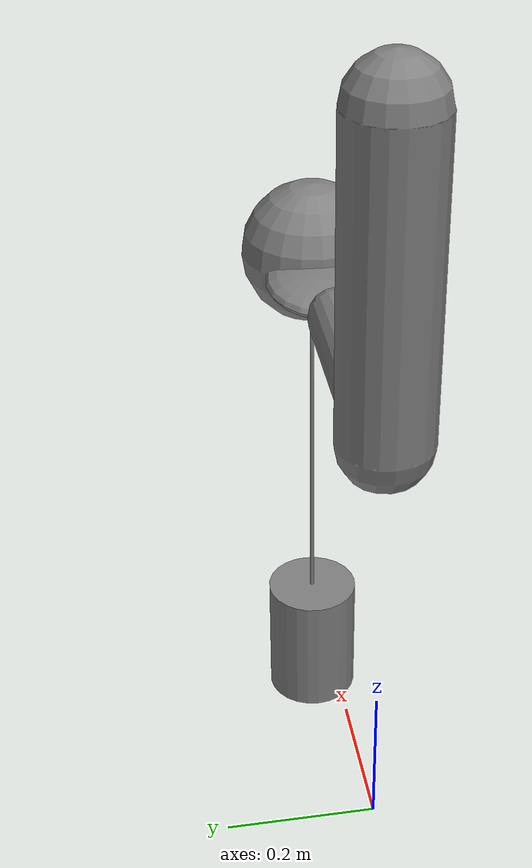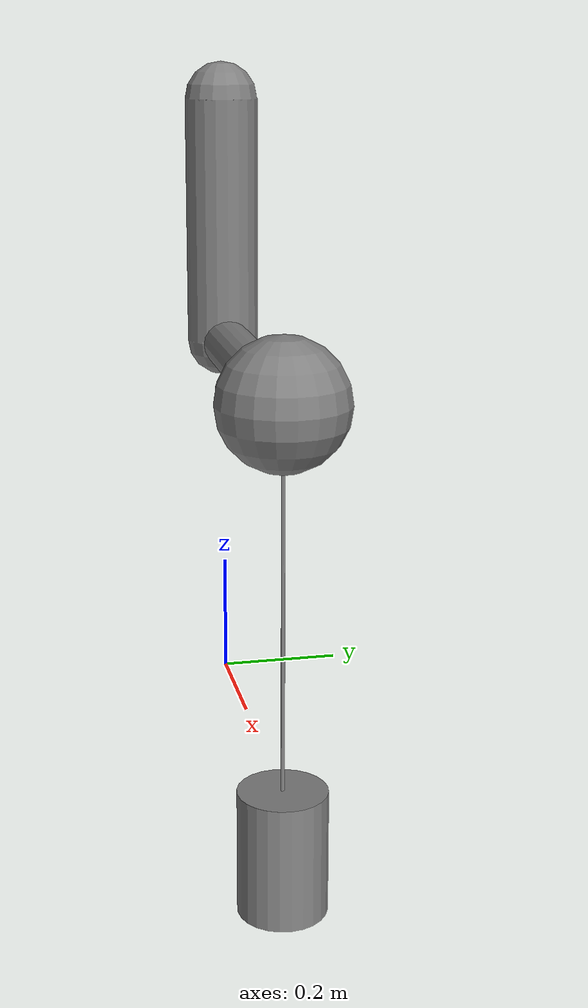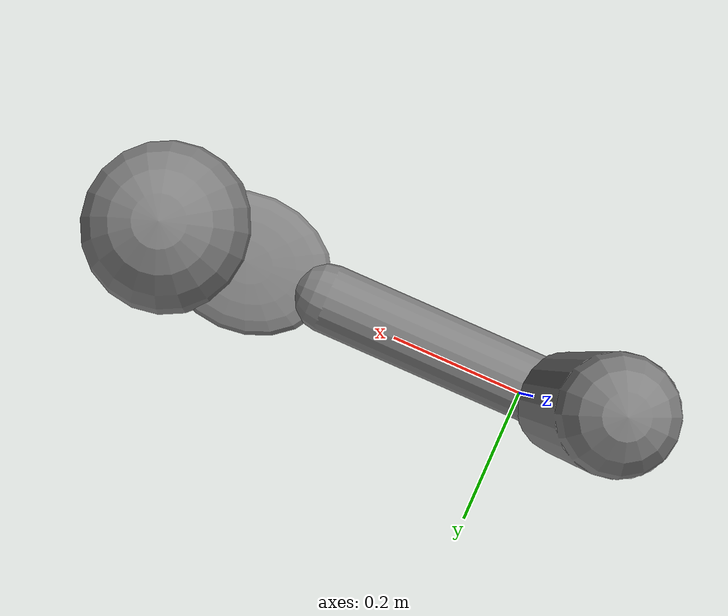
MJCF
<mujoco>
   <worldbody>
      <body pos = "0 0 0">
         <geom type="capsule" fromto="0 0 1  0 0 0.6" size="0.06"/>
         <joint type="ball" pos="0 0 1"/>
         <body pos="0 0 0">
            <geom type="capsule" fromto="0 0 0.6  0.3 0 0.6" size="0.04"/>
            <joint type="hinge" pos="0 0 0.6" axis="0 1 0"/>
            <joint type="hinge" pos="0 0 0.6" axis="1 0 0"/>
            <body pos="0 0 0">
               <geom type="ellipsoid" pos="0.4 0 0.6" size="0.1 0.08 0.02"/>
               <site name="end1" type="ellipsoid"  pos="0.5 0 0.6" size=".1 .1 .1"/>
               <joint type="hinge" pos="0.3 0 0.6" axis="0 1 0"/>
               <joint type="hinge" pos="0.3 0 0.6" axis="0 0 1"/>
            </body>
         </body>
      </body>
      <body pos="0 0 0">
         <geom type="cylinder" fromto="0.5 0 0  0.5 0 -0.2" size="0.07"/>
         <site name="end2" type="ellipsoid" pos="0.5 0 0" size=".001 .001 .01"/>
         <joint type="free"/>
      </body>
   </worldbody>

   <tendon>
      <spatial limited="true" range="0 0.6">
         <site site="end1"/>
         <site site="end2"/>
      </spatial>
   </tendon>
</mujoco>
